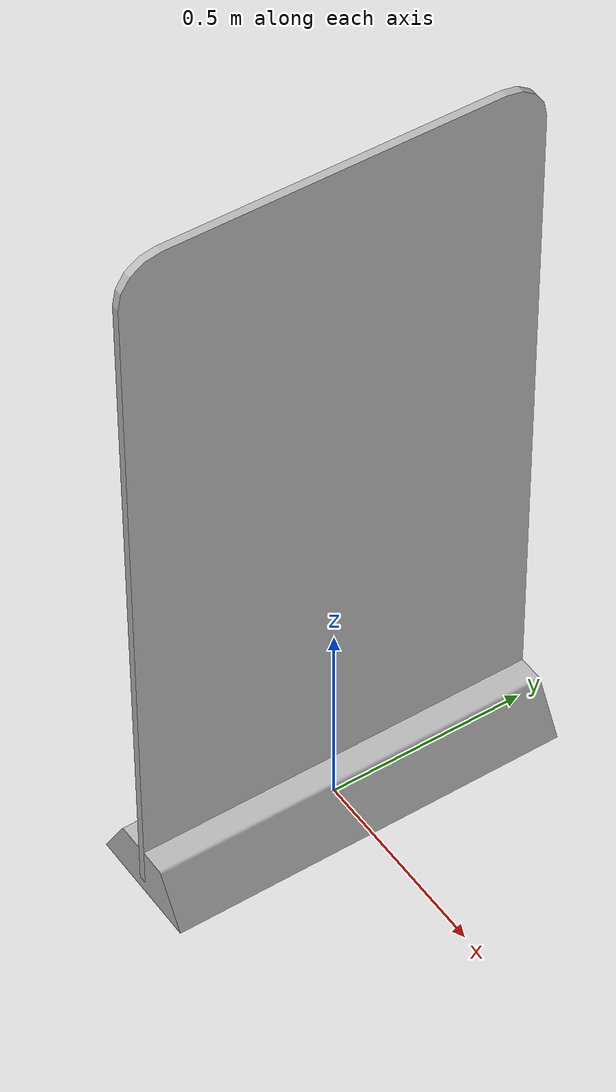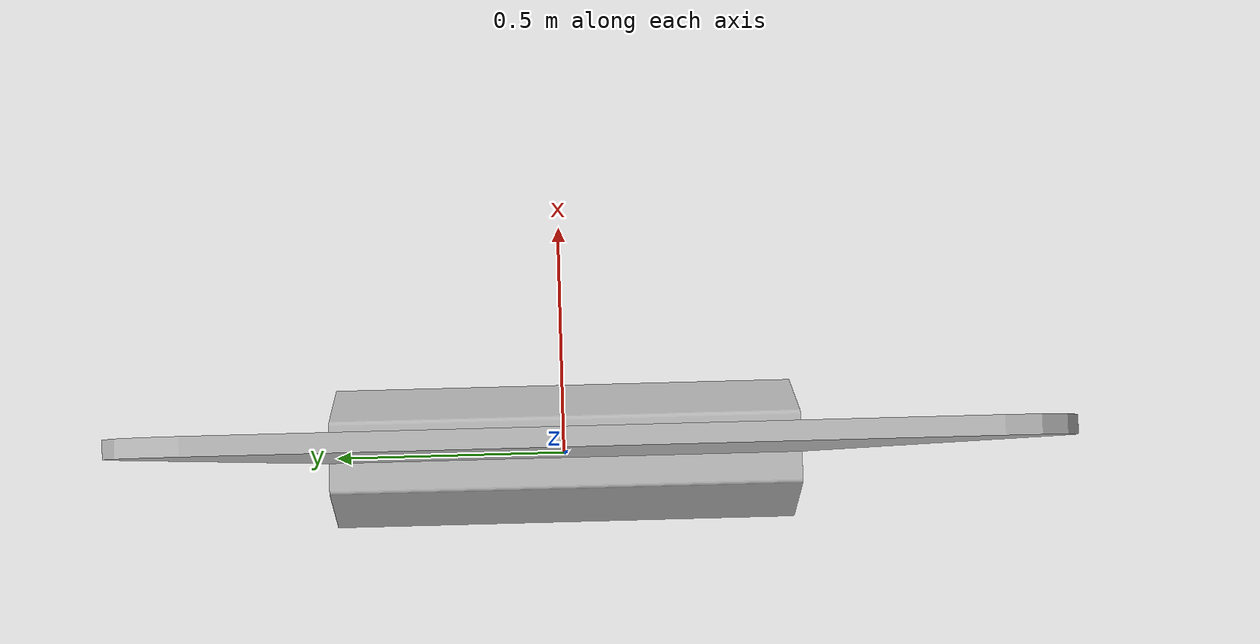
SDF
<sdf version='1.6'>
  <model name='board'>
    <link name='base_link'>
      <pose frame=''>0 0 0 0 -0 0</pose>
      <inertial>
        <pose frame=''>0 -0 0.551885 0 -0 0</pose>
        <mass>63.153</mass>
        <inertia>
          <ixx>26.7135</ixx>
          <ixy>-1.05606e-14</ixy>
          <ixz>5.56255e-17</ixz>
          <iyy>21.6015</iyy>
          <iyz>1.17624e-13</iyz>
          <izz>5.3885</izz>
        </inertia>
      </inertial>
      <collision name='base_link_collision'>
        <pose frame=''>0 0 0 0 -0 0</pose>
        <geometry>
          <mesh>
            <scale>1 1 1</scale>
            <uri>model://board/meshes/base_link.STL</uri>
          </mesh>
        </geometry>
      </collision>
      <collision name='base_link_fixed_joint_lump__blank_link_collision_1'>
        <pose frame=''>-0.01 0 0.9279 0 -0 0</pose>
        <geometry>
          <mesh>
            <scale>1 1 1</scale>
            <uri>model://board/meshes/blank_link.dae</uri>
          </mesh>
        </geometry>
      </collision>
      <visual name='base_link_visual'>
        <pose frame=''>0 0 0 0 -0 0</pose>
        <geometry>
          <mesh>
            <scale>1 1 1</scale>
            <uri>model://board/meshes/base_link.STL</uri>
          </mesh>
        </geometry>
      </visual>
      <visual name='base_link_fixed_joint_lump__blank_link_visual_1'>
        <pose frame=''>-0.01 0 0.9279 0 -0 0</pose>
        <geometry>
          <mesh>
            <scale>1 1 1</scale>
            <uri>model://board/meshes/blank_link.dae</uri>
          </mesh>
        </geometry>
      </visual>
    </link>
  </model>
</sdf>
